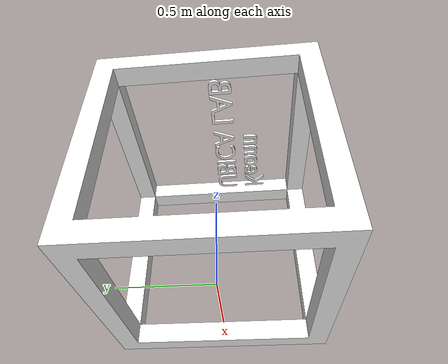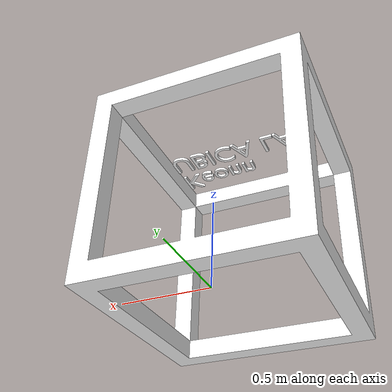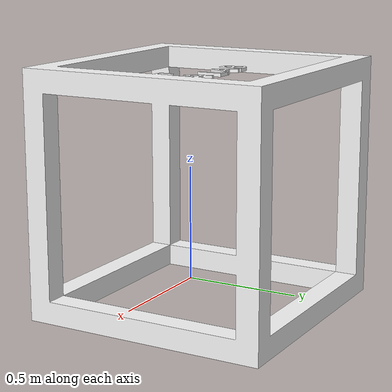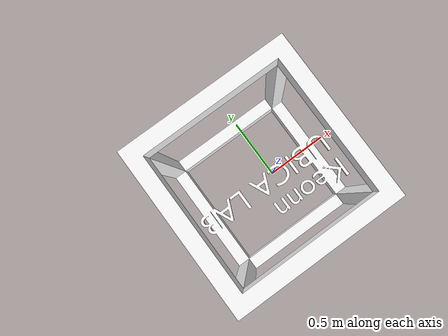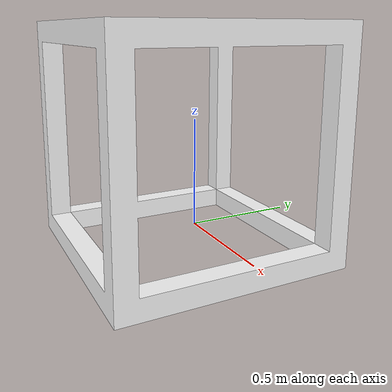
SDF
<?xml version='1.0'?>
<sdf version="1.4">
  <model name="small_fixture">
    <pose>0 0 0 0 -0 0</pose>
    <static>true</static>
    <link name="link">
        <inertial>
        <pose>-0 0 0 0 0 0</pose>
          <mass>0.015</mass>
          <inertia>
            <ixx>4.15e-6</ixx>
          <ixy>0</ixy>
          <ixz>0</ixz>
          <iyy>2.407e-6</iyy>
          <iyz>0</iyz>
          <izz>2.407e-6</izz>
          </inertia>
        </inertial>
        <collision name='collision'>
          <geometry>
            <box>
              <size>0.1 0.1 0.1</size>
            </box>
          </geometry>
          <max_contacts>10</max_contacts>
          <surface>
            <contact>
          <collide_bitmask>0x01</collide_bitmask>
        </contact>
          </surface>
        </collision>
        <visual name='visual'>
          <pose>-0.12 0 -0.11 0 0 3.14</pose>
          <geometry>
     	    <mesh>
              <uri>model://normal_size_fixture/meshes/transparent box miniv3.dae</uri>
            </mesh>
          </geometry>
          <material>
	    <ambient>1 1 1 1</ambient>
            <diffuse>1 1 1 1</diffuse>
            <specular>1 1 1 1</specular>
    	    <emissive>0 0 0 0</emissive>
	  </material>
        </visual>
        <self_collide>0</self_collide>
        <kinematic>0</kinematic>
    </link>
  </model>
</sdf>
